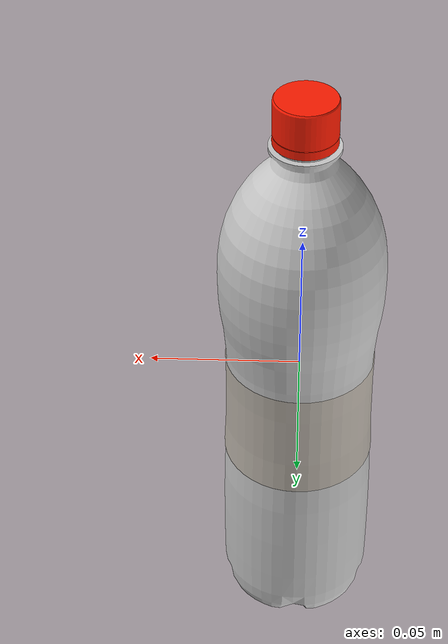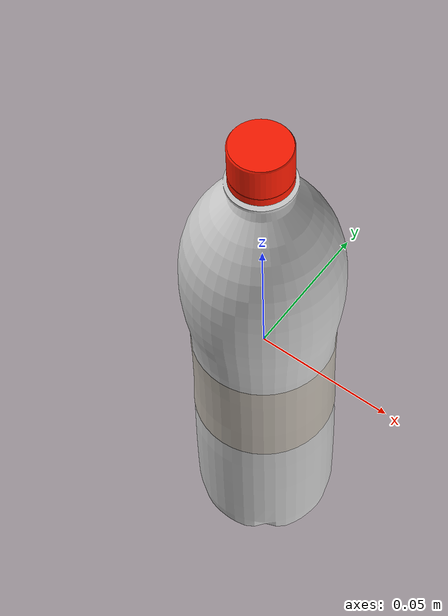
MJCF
<?xml version='1.0' encoding='utf-8'?>
<mujoco model="bottled_water_2">
  <asset>
    <mesh file="visual/model_normalized_0.obj" name="model_normalized_0_vis" scale="0.206061 0.206061 0.206061" refquat="1.0 0.0 0.0 0.0" />
    <mesh file="visual/model_normalized_1.obj" name="model_normalized_1_vis" scale="0.206061 0.206061 0.206061" refquat="1.0 0.0 0.0 0.0" />
    <mesh file="visual/model_normalized_2.obj" name="model_normalized_2_vis" scale="0.206061 0.206061 0.206061" refquat="1.0 0.0 0.0 0.0" />
    <texture type="2d" name="image3" file="visual/image3.png" />
    <material name="Plastic_-_regular" specular="0.5" shininess="0.809999997" rgba="0.800000 0.800000 0.800000 1.0" />
    <material name="label_1" texture="image3" specular="0.5" shininess="0.25" />
    <material name="orange_plastic" specular="0.5" shininess="0.359999993" rgba="1.000000 0.105974 0.003746 1.0" />
    <mesh file="collision/collision_mesh_collision_0.obj" name="bottled_collision_mesh_0" scale="0.206061 0.206061 0.206061" refquat="1.0 0.0 0.0 0.0" />
    <mesh file="collision/collision_mesh_collision_1.obj" name="bottled_collision_mesh_1" scale="0.206061 0.206061 0.206061" refquat="1.0 0.0 0.0 0.0" />
    <mesh file="collision/collision_mesh_collision_2.obj" name="bottled_collision_mesh_2" scale="0.206061 0.206061 0.206061" refquat="1.0 0.0 0.0 0.0" />
    <mesh file="collision/collision_mesh_collision_3.obj" name="bottled_collision_mesh_3" scale="0.206061 0.206061 0.206061" refquat="1.0 0.0 0.0 0.0" />
    <mesh file="collision/collision_mesh_collision_4.obj" name="bottled_collision_mesh_4" scale="0.206061 0.206061 0.206061" refquat="1.0 0.0 0.0 0.0" />
    <mesh file="collision/collision_mesh_collision_5.obj" name="bottled_collision_mesh_5" scale="0.206061 0.206061 0.206061" refquat="1.0 0.0 0.0 0.0" />
    <mesh file="collision/collision_mesh_collision_6.obj" name="bottled_collision_mesh_6" scale="0.206061 0.206061 0.206061" refquat="1.0 0.0 0.0 0.0" />
    <mesh file="collision/collision_mesh_collision_7.obj" name="bottled_collision_mesh_7" scale="0.206061 0.206061 0.206061" refquat="1.0 0.0 0.0 0.0" />
    </asset>
  <default>
    <default class="region">
      <geom group="1" conaffinity="0" contype="0" rgba="0 1 0 0" />
      </default>
    <default class="collision">
      <geom group="3" rgba="0.5 0 0 0.5" density="1000.0" />
      </default>
    </default>
  <worldbody>
    <body>
      <body name="object">
        <geom density="100" friction="0.95 0.3 0.1" type="mesh" mesh="model_normalized_0_vis" conaffinity="0" contype="0" group="1" material="label_1" />
        <geom density="100" friction="0.95 0.3 0.1" type="mesh" mesh="model_normalized_1_vis" conaffinity="0" contype="0" group="1" material="orange_plastic" />
        <geom density="100" friction="0.95 0.3 0.1" type="mesh" mesh="model_normalized_2_vis" conaffinity="0" contype="0" group="1" material="Plastic_-_regular" />
        <geom class="region" name="reg_bbox" type="box" pos="1.0823049999999571e-05 0.00010033399999999984 0.00015564434999999072" size="0.0211365964 0.0220940874 0.08453032145" />
        <geom mesh="bottled_collision_mesh_0" type="mesh" class="collision"  solref="0.004 1" solimp="0.998 0.998 0.001"/>
        <geom mesh="bottled_collision_mesh_1" type="mesh" class="collision"  solref="0.004 1" solimp="0.998 0.998 0.001"/>
        <geom mesh="bottled_collision_mesh_2" type="mesh" class="collision"  solref="0.004 1" solimp="0.998 0.998 0.001"/>
        <geom mesh="bottled_collision_mesh_3" type="mesh" class="collision"  solref="0.004 1" solimp="0.998 0.998 0.001"/>
        <geom mesh="bottled_collision_mesh_4" type="mesh" class="collision"  solref="0.004 1" solimp="0.998 0.998 0.001"/>
        <geom mesh="bottled_collision_mesh_5" type="mesh" class="collision"  solref="0.004 1" solimp="0.998 0.998 0.001"/>
        <geom mesh="bottled_collision_mesh_6" type="mesh" class="collision"  solref="0.004 1" solimp="0.998 0.998 0.001"/>
        <geom mesh="bottled_collision_mesh_7" type="mesh" class="collision"  solref="0.004 1" solimp="0.998 0.998 0.001"/>
        </body>
      </body>
    </worldbody>
  </mujoco>
